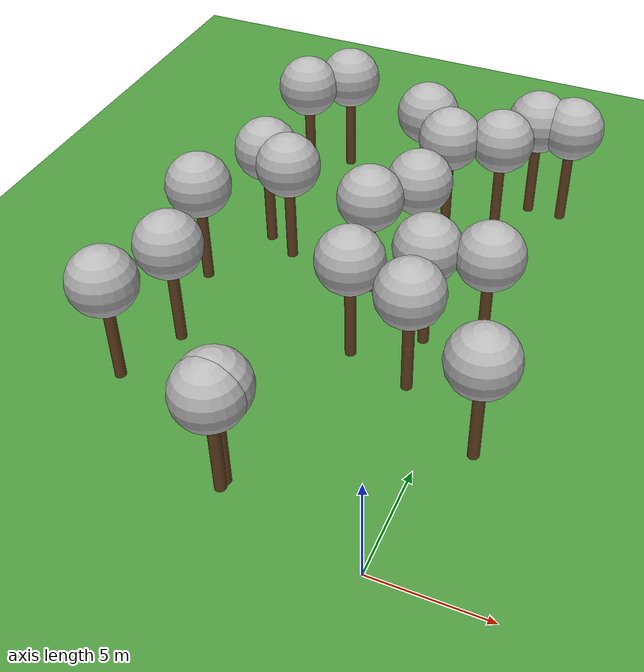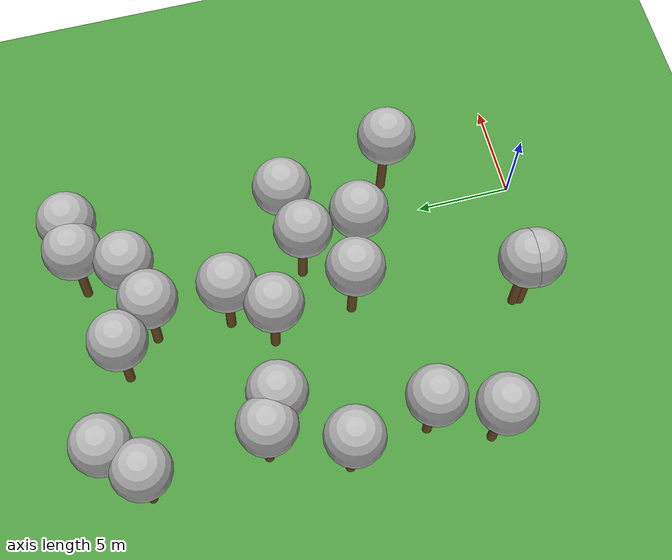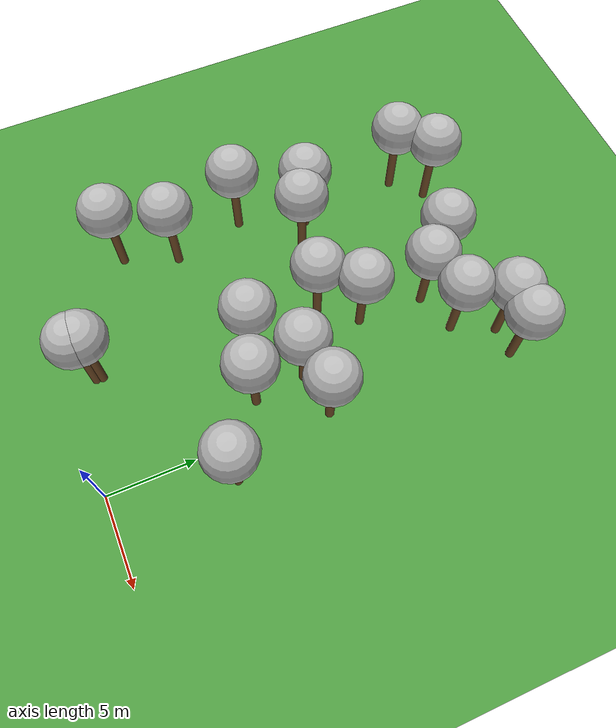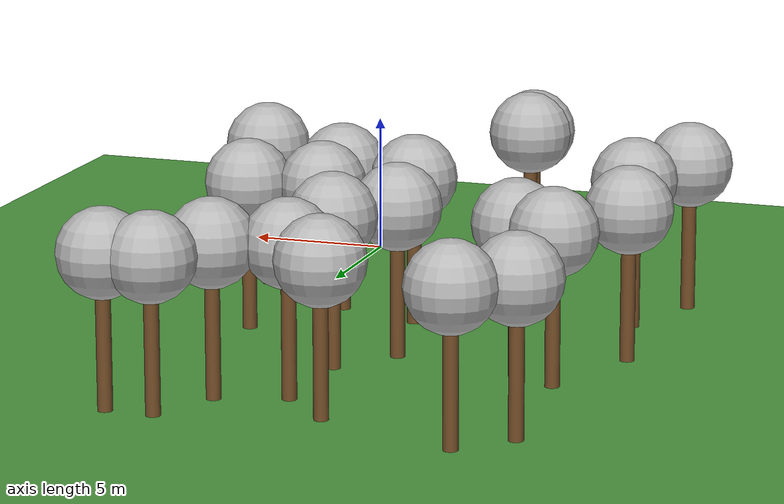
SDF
<sdf version="1.5">
 <world name="default">
  <model name="tree_simple488">
   <static>1</static>
   <link name="link">
    <pose>0 0 0.1 0 -0 0</pose>
    <collision name="collision_trunk">
     <pose>0 0 2 0 -0 0</pose>
     <geometry><cylinder><radius>0.25</radius><length>4</length></cylinder></geometry>
    </collision>
    <collision name="collision_treetop">
     <pose>0 0 5.2 0 -0 0</pose>
     <geometry><sphere><radius>1.5</radius></sphere></geometry>
    </collision>
    <visual name="trunk">
     <pose>0 0 2 0 -0 0</pose>
     <geometry><cylinder><radius>0.25</radius><length>4</length></cylinder></geometry>
     <material>
      <script>
       <uri>model://tree_simple/scripts</uri>
       <uri>model://tree_simple/materials/textures</uri>
       <name>TreeSimple/Trunk</name>
      </script>
     </material>
    </visual>
    <visual name="treetop">
     <pose>0 0 5.2 0 -0 0</pose>
     <geometry><sphere><radius>1.5</radius></sphere></geometry>
     <material>
      <script>
       <uri>model://tree_simple/scripts</uri>
       <uri>model://tree_simple/materials/textures</uri>
       <name>TreeSimple/Treetop</name>
      </script>
     </material>
    </visual>
   </link>
   <pose>-13.1215818691 12.435953241 0 0 -0 0</pose>
  </model>
  <model name="tree_simple480">
   <static>1</static>
   <link name="link">
    <pose>0 0 0.1 0 -0 0</pose>
    <collision name="collision_trunk">
     <pose>0 0 2 0 -0 0</pose>
     <geometry><cylinder><radius>0.25</radius><length>4</length></cylinder></geometry>
    </collision>
    <collision name="collision_treetop">
     <pose>0 0 5.2 0 -0 0</pose>
     <geometry><sphere><radius>1.5</radius></sphere></geometry>
    </collision>
    <visual name="trunk">
     <pose>0 0 2 0 -0 0</pose>
     <geometry><cylinder><radius>0.25</radius><length>4</length></cylinder></geometry>
     <material>
      <script>
       <uri>model://tree_simple/scripts</uri>
       <uri>model://tree_simple/materials/textures</uri>
       <name>TreeSimple/Trunk</name>
      </script>
     </material>
    </visual>
    <visual name="treetop">
     <pose>0 0 5.2 0 -0 0</pose>
     <geometry><sphere><radius>1.5</radius></sphere></geometry>
     <material>
      <script>
       <uri>model://tree_simple/scripts</uri>
       <uri>model://tree_simple/materials/textures</uri>
       <name>TreeSimple/Treetop</name>
      </script>
     </material>
    </visual>
   </link>
   <pose>-2.16211412072 12.1351070175 0 0 -0 0</pose>
  </model>
  <model name="tree_simple479">
   <static>1</static>
   <link name="link">
    <pose>0 0 0.1 0 -0 0</pose>
    <collision name="collision_trunk">
     <pose>0 0 2 0 -0 0</pose>
     <geometry><cylinder><radius>0.25</radius><length>4</length></cylinder></geometry>
    </collision>
    <collision name="collision_treetop">
     <pose>0 0 5.2 0 -0 0</pose>
     <geometry><sphere><radius>1.5</radius></sphere></geometry>
    </collision>
    <visual name="trunk">
     <pose>0 0 2 0 -0 0</pose>
     <geometry><cylinder><radius>0.25</radius><length>4</length></cylinder></geometry>
     <material>
      <script>
       <uri>model://tree_simple/scripts</uri>
       <uri>model://tree_simple/materials/textures</uri>
       <name>TreeSimple/Trunk</name>
      </script>
     </material>
    </visual>
    <visual name="treetop">
     <pose>0 0 5.2 0 -0 0</pose>
     <geometry><sphere><radius>1.5</radius></sphere></geometry>
     <material>
      <script>
       <uri>model://tree_simple/scripts</uri>
       <uri>model://tree_simple/materials/textures</uri>
       <name>TreeSimple/Treetop</name>
      </script>
     </material>
    </visual>
   </link>
   <pose>-12.2778199556 22.3020251283 0 0 -0 0</pose>
  </model>
  <model name="tree_simple471">
   <static>1</static>
   <link name="link">
    <pose>0 0 0.1 0 -0 0</pose>
    <collision name="collision_trunk">
     <pose>0 0 2 0 -0 0</pose>
     <geometry><cylinder><radius>0.25</radius><length>4</length></cylinder></geometry>
    </collision>
    <collision name="collision_treetop">
     <pose>0 0 5.2 0 -0 0</pose>
     <geometry><sphere><radius>1.5</radius></sphere></geometry>
    </collision>
    <visual name="trunk">
     <pose>0 0 2 0 -0 0</pose>
     <geometry><cylinder><radius>0.25</radius><length>4</length></cylinder></geometry>
     <material>
      <script>
       <uri>model://tree_simple/scripts</uri>
       <uri>model://tree_simple/materials/textures</uri>
       <name>TreeSimple/Trunk</name>
      </script>
     </material>
    </visual>
    <visual name="treetop">
     <pose>0 0 5.2 0 -0 0</pose>
     <geometry><sphere><radius>1.5</radius></sphere></geometry>
     <material>
      <script>
       <uri>model://tree_simple/scripts</uri>
       <uri>model://tree_simple/materials/textures</uri>
       <name>TreeSimple/Treetop</name>
      </script>
     </material>
    </visual>
   </link>
   <pose>-4.10985349052 16.4703272545 0 0 -0 0</pose>
  </model>
  <model name="tree_simple466">
   <static>1</static>
   <link name="link">
    <pose>0 0 0.1 0 -0 0</pose>
    <collision name="collision_trunk">
     <pose>0 0 2 0 -0 0</pose>
     <geometry><cylinder><radius>0.25</radius><length>4</length></cylinder></geometry>
    </collision>
    <collision name="collision_treetop">
     <pose>0 0 5.2 0 -0 0</pose>
     <geometry><sphere><radius>1.5</radius></sphere></geometry>
    </collision>
    <visual name="trunk">
     <pose>0 0 2 0 -0 0</pose>
     <geometry><cylinder><radius>0.25</radius><length>4</length></cylinder></geometry>
     <material>
      <script>
       <uri>model://tree_simple/scripts</uri>
       <uri>model://tree_simple/materials/textures</uri>
       <name>TreeSimple/Trunk</name>
      </script>
     </material>
    </visual>
    <visual name="treetop">
     <pose>0 0 5.2 0 -0 0</pose>
     <geometry><sphere><radius>1.5</radius></sphere></geometry>
     <material>
      <script>
       <uri>model://tree_simple/scripts</uri>
       <uri>model://tree_simple/materials/textures</uri>
       <name>TreeSimple/Treetop</name>
      </script>
     </material>
    </visual>
   </link>
   <pose>-5.77986608036 22.173723886 0 0 -0 0</pose>
  </model>
  <model name="tree_simple453">
   <static>1</static>
   <link name="link">
    <pose>0 0 0.1 0 -0 0</pose>
    <collision name="collision_trunk">
     <pose>0 0 2 0 -0 0</pose>
     <geometry><cylinder><radius>0.25</radius><length>4</length></cylinder></geometry>
    </collision>
    <collision name="collision_treetop">
     <pose>0 0 5.2 0 -0 0</pose>
     <geometry><sphere><radius>1.5</radius></sphere></geometry>
    </collision>
    <visual name="trunk">
     <pose>0 0 2 0 -0 0</pose>
     <geometry><cylinder><radius>0.25</radius><length>4</length></cylinder></geometry>
     <material>
      <script>
       <uri>model://tree_simple/scripts</uri>
       <uri>model://tree_simple/materials/textures</uri>
       <name>TreeSimple/Trunk</name>
      </script>
     </material>
    </visual>
    <visual name="treetop">
     <pose>0 0 5.2 0 -0 0</pose>
     <geometry><sphere><radius>1.5</radius></sphere></geometry>
     <material>
      <script>
       <uri>model://tree_simple/scripts</uri>
       <uri>model://tree_simple/materials/textures</uri>
       <name>TreeSimple/Treetop</name>
      </script>
     </material>
    </visual>
   </link>
   <pose>-12.135251061 8.19022164755 0 0 -0 0</pose>
  </model>
  <model name="tree_simple442">
   <static>1</static>
   <link name="link">
    <pose>0 0 0.1 0 -0 0</pose>
    <collision name="collision_trunk">
     <pose>0 0 2 0 -0 0</pose>
     <geometry><cylinder><radius>0.25</radius><length>4</length></cylinder></geometry>
    </collision>
    <collision name="collision_treetop">
     <pose>0 0 5.2 0 -0 0</pose>
     <geometry><sphere><radius>1.5</radius></sphere></geometry>
    </collision>
    <visual name="trunk">
     <pose>0 0 2 0 -0 0</pose>
     <geometry><cylinder><radius>0.25</radius><length>4</length></cylinder></geometry>
     <material>
      <script>
       <uri>model://tree_simple/scripts</uri>
       <uri>model://tree_simple/materials/textures</uri>
       <name>TreeSimple/Trunk</name>
      </script>
     </material>
    </visual>
    <visual name="treetop">
     <pose>0 0 5.2 0 -0 0</pose>
     <geometry><sphere><radius>1.5</radius></sphere></geometry>
     <material>
      <script>
       <uri>model://tree_simple/scripts</uri>
       <uri>model://tree_simple/materials/textures</uri>
       <name>TreeSimple/Treetop</name>
      </script>
     </material>
    </visual>
   </link>
   <pose>-1.68249170611 21.1094247696 0 0 -0 0</pose>
  </model>
  <model name="tree_simple417">
   <static>1</static>
   <link name="link">
    <pose>0 0 0.1 0 -0 0</pose>
    <collision name="collision_trunk">
     <pose>0 0 2 0 -0 0</pose>
     <geometry><cylinder><radius>0.25</radius><length>4</length></cylinder></geometry>
    </collision>
    <collision name="collision_treetop">
     <pose>0 0 5.2 0 -0 0</pose>
     <geometry><sphere><radius>1.5</radius></sphere></geometry>
    </collision>
    <visual name="trunk">
     <pose>0 0 2 0 -0 0</pose>
     <geometry><cylinder><radius>0.25</radius><length>4</length></cylinder></geometry>
     <material>
      <script>
       <uri>model://tree_simple/scripts</uri>
       <uri>model://tree_simple/materials/textures</uri>
       <name>TreeSimple/Trunk</name>
      </script>
     </material>
    </visual>
    <visual name="treetop">
     <pose>0 0 5.2 0 -0 0</pose>
     <geometry><sphere><radius>1.5</radius></sphere></geometry>
     <material>
      <script>
       <uri>model://tree_simple/scripts</uri>
       <uri>model://tree_simple/materials/textures</uri>
       <name>TreeSimple/Treetop</name>
      </script>
     </material>
    </visual>
   </link>
   <pose>-1.82310579314 9.17527441854 0 0 -0 0</pose>
  </model>
  <model name="tree_simple412">
   <static>1</static>
   <link name="link">
    <pose>0 0 0.1 0 -0 0</pose>
    <collision name="collision_trunk">
     <pose>0 0 2 0 -0 0</pose>
     <geometry><cylinder><radius>0.25</radius><length>4</length></cylinder></geometry>
    </collision>
    <collision name="collision_treetop">
     <pose>0 0 5.2 0 -0 0</pose>
     <geometry><sphere><radius>1.5</radius></sphere></geometry>
    </collision>
    <visual name="trunk">
     <pose>0 0 2 0 -0 0</pose>
     <geometry><cylinder><radius>0.25</radius><length>4</length></cylinder></geometry>
     <material>
      <script>
       <uri>model://tree_simple/scripts</uri>
       <uri>model://tree_simple/materials/textures</uri>
       <name>TreeSimple/Trunk</name>
      </script>
     </material>
    </visual>
    <visual name="treetop">
     <pose>0 0 5.2 0 -0 0</pose>
     <geometry><sphere><radius>1.5</radius></sphere></geometry>
     <material>
      <script>
       <uri>model://tree_simple/scripts</uri>
       <uri>model://tree_simple/materials/textures</uri>
       <name>TreeSimple/Treetop</name>
      </script>
     </material>
    </visual>
   </link>
   <pose>1.94235434688 6.68973059551 0 0 -0 0</pose>
  </model>
  <model name="tree_simple282">
   <static>1</static>
   <link name="link">
    <pose>0 0 0.1 0 -0 0</pose>
    <collision name="collision_trunk">
     <pose>0 0 2 0 -0 0</pose>
     <geometry><cylinder><radius>0.25</radius><length>4</length></cylinder></geometry>
    </collision>
    <collision name="collision_treetop">
     <pose>0 0 5.2 0 -0 0</pose>
     <geometry><sphere><radius>1.5</radius></sphere></geometry>
    </collision>
    <visual name="trunk">
     <pose>0 0 2 0 -0 0</pose>
     <geometry><cylinder><radius>0.25</radius><length>4</length></cylinder></geometry>
     <material>
      <script>
       <uri>model://tree_simple/scripts</uri>
       <uri>model://tree_simple/materials/textures</uri>
       <name>TreeSimple/Trunk</name>
      </script>
     </material>
    </visual>
    <visual name="treetop">
     <pose>0 0 5.2 0 -0 0</pose>
     <geometry><sphere><radius>1.5</radius></sphere></geometry>
     <material>
      <script>
       <uri>model://tree_simple/scripts</uri>
       <uri>model://tree_simple/materials/textures</uri>
       <name>TreeSimple/Treetop</name>
      </script>
     </material>
    </visual>
   </link>
   <pose>-10.116665752 15.3935200089 0 0 -0 0</pose>
  </model>
  <model name="tree_simple232">
   <static>1</static>
   <link name="link">
    <pose>0 0 0.1 0 -0 0</pose>
    <collision name="collision_trunk">
     <pose>0 0 2 0 -0 0</pose>
     <geometry><cylinder><radius>0.25</radius><length>4</length></cylinder></geometry>
    </collision>
    <collision name="collision_treetop">
     <pose>0 0 5.2 0 -0 0</pose>
     <geometry><sphere><radius>1.5</radius></sphere></geometry>
    </collision>
    <visual name="trunk">
     <pose>0 0 2 0 -0 0</pose>
     <geometry><cylinder><radius>0.25</radius><length>4</length></cylinder></geometry>
     <material>
      <script>
       <uri>model://tree_simple/scripts</uri>
       <uri>model://tree_simple/materials/textures</uri>
       <name>TreeSimple/Trunk</name>
      </script>
     </material>
    </visual>
    <visual name="treetop">
     <pose>0 0 5.2 0 -0 0</pose>
     <geometry><sphere><radius>1.5</radius></sphere></geometry>
     <material>
      <script>
       <uri>model://tree_simple/scripts</uri>
       <uri>model://tree_simple/materials/textures</uri>
       <name>TreeSimple/Treetop</name>
      </script>
     </material>
    </visual>
   </link>
   <pose>-11.6357803634 16.236207717 0 0 -0 0</pose>
  </model>
  <model name="tree_simple187">
   <static>1</static>
   <link name="link">
    <pose>0 0 0.1 0 -0 0</pose>
    <collision name="collision_trunk">
     <pose>0 0 2 0 -0 0</pose>
     <geometry><cylinder><radius>0.25</radius><length>4</length></cylinder></geometry>
    </collision>
    <collision name="collision_treetop">
     <pose>0 0 5.2 0 -0 0</pose>
     <geometry><sphere><radius>1.5</radius></sphere></geometry>
    </collision>
    <visual name="trunk">
     <pose>0 0 2 0 -0 0</pose>
     <geometry><cylinder><radius>0.25</radius><length>4</length></cylinder></geometry>
     <material>
      <script>
       <uri>model://tree_simple/scripts</uri>
       <uri>model://tree_simple/materials/textures</uri>
       <name>TreeSimple/Trunk</name>
      </script>
     </material>
    </visual>
    <visual name="treetop">
     <pose>0 0 5.2 0 -0 0</pose>
     <geometry><sphere><radius>1.5</radius></sphere></geometry>
     <material>
      <script>
       <uri>model://tree_simple/scripts</uri>
       <uri>model://tree_simple/materials/textures</uri>
       <name>TreeSimple/Treetop</name>
      </script>
     </material>
    </visual>
   </link>
   <pose>-6.45553635196 1.79140972094 0 0 -0 0</pose>
  </model>
  <model name="tree_simple175">
   <static>1</static>
   <link name="link">
    <pose>0 0 0.1 0 -0 0</pose>
    <collision name="collision_trunk">
     <pose>0 0 2 0 -0 0</pose>
     <geometry><cylinder><radius>0.25</radius><length>4</length></cylinder></geometry>
    </collision>
    <collision name="collision_treetop">
     <pose>0 0 5.2 0 -0 0</pose>
     <geometry><sphere><radius>1.5</radius></sphere></geometry>
    </collision>
    <visual name="trunk">
     <pose>0 0 2 0 -0 0</pose>
     <geometry><cylinder><radius>0.25</radius><length>4</length></cylinder></geometry>
     <material>
      <script>
       <uri>model://tree_simple/scripts</uri>
       <uri>model://tree_simple/materials/textures</uri>
       <name>TreeSimple/Trunk</name>
      </script>
     </material>
    </visual>
    <visual name="treetop">
     <pose>0 0 5.2 0 -0 0</pose>
     <geometry><sphere><radius>1.5</radius></sphere></geometry>
     <material>
      <script>
       <uri>model://tree_simple/scripts</uri>
       <uri>model://tree_simple/materials/textures</uri>
       <name>TreeSimple/Treetop</name>
      </script>
     </material>
    </visual>
   </link>
   <pose>-0.556108098606 23.4554331428 0 0 -0 0</pose>
  </model>
  <model name="tree_simple165">
   <static>1</static>
   <link name="link">
    <pose>0 0 0.1 0 -0 0</pose>
    <collision name="collision_trunk">
     <pose>0 0 2 0 -0 0</pose>
     <geometry><cylinder><radius>0.25</radius><length>4</length></cylinder></geometry>
    </collision>
    <collision name="collision_treetop">
     <pose>0 0 5.2 0 -0 0</pose>
     <geometry><sphere><radius>1.5</radius></sphere></geometry>
    </collision>
    <visual name="trunk">
     <pose>0 0 2 0 -0 0</pose>
     <geometry><cylinder><radius>0.25</radius><length>4</length></cylinder></geometry>
     <material>
      <script>
       <uri>model://tree_simple/scripts</uri>
       <uri>model://tree_simple/materials/textures</uri>
       <name>TreeSimple/Trunk</name>
      </script>
     </material>
    </visual>
    <visual name="treetop">
     <pose>0 0 5.2 0 -0 0</pose>
     <geometry><sphere><radius>1.5</radius></sphere></geometry>
     <material>
      <script>
       <uri>model://tree_simple/scripts</uri>
       <uri>model://tree_simple/materials/textures</uri>
       <name>TreeSimple/Treetop</name>
      </script>
     </material>
    </visual>
   </link>
   <pose>-6.476660544 1.43780692284 0 0 -0 0</pose>
  </model>
  <model name="tree_simple158">
   <static>1</static>
   <link name="link">
    <pose>0 0 0.1 0 -0 0</pose>
    <collision name="collision_trunk">
     <pose>0 0 2 0 -0 0</pose>
     <geometry><cylinder><radius>0.25</radius><length>4</length></cylinder></geometry>
    </collision>
    <collision name="collision_treetop">
     <pose>0 0 5.2 0 -0 0</pose>
     <geometry><sphere><radius>1.5</radius></sphere></geometry>
    </collision>
    <visual name="trunk">
     <pose>0 0 2 0 -0 0</pose>
     <geometry><cylinder><radius>0.25</radius><length>4</length></cylinder></geometry>
     <material>
      <script>
       <uri>model://tree_simple/scripts</uri>
       <uri>model://tree_simple/materials/textures</uri>
       <name>TreeSimple/Trunk</name>
      </script>
     </material>
    </visual>
    <visual name="treetop">
     <pose>0 0 5.2 0 -0 0</pose>
     <geometry><sphere><radius>1.5</radius></sphere></geometry>
     <material>
      <script>
       <uri>model://tree_simple/scripts</uri>
       <uri>model://tree_simple/materials/textures</uri>
       <name>TreeSimple/Treetop</name>
      </script>
     </material>
    </visual>
   </link>
   <pose>-5.6810181288 14.4728525014 0 0 -0 0</pose>
  </model>
  <model name="tree_simple130">
   <static>1</static>
   <link name="link">
    <pose>0 0 0.1 0 -0 0</pose>
    <collision name="collision_trunk">
     <pose>0 0 2 0 -0 0</pose>
     <geometry><cylinder><radius>0.25</radius><length>4</length></cylinder></geometry>
    </collision>
    <collision name="collision_treetop">
     <pose>0 0 5.2 0 -0 0</pose>
     <geometry><sphere><radius>1.5</radius></sphere></geometry>
    </collision>
    <visual name="trunk">
     <pose>0 0 2 0 -0 0</pose>
     <geometry><cylinder><radius>0.25</radius><length>4</length></cylinder></geometry>
     <material>
      <script>
       <uri>model://tree_simple/scripts</uri>
       <uri>model://tree_simple/materials/textures</uri>
       <name>TreeSimple/Trunk</name>
      </script>
     </material>
    </visual>
    <visual name="treetop">
     <pose>0 0 5.2 0 -0 0</pose>
     <geometry><sphere><radius>1.5</radius></sphere></geometry>
     <material>
      <script>
       <uri>model://tree_simple/scripts</uri>
       <uri>model://tree_simple/materials/textures</uri>
       <name>TreeSimple/Treetop</name>
      </script>
     </material>
    </visual>
   </link>
   <pose>-4.79782028342 10.1484836022 0 0 -0 0</pose>
  </model>
  <model name="tree_simple86">
   <static>1</static>
   <link name="link">
    <pose>0 0 0.1 0 -0 0</pose>
    <collision name="collision_trunk">
     <pose>0 0 2 0 -0 0</pose>
     <geometry><cylinder><radius>0.25</radius><length>4</length></cylinder></geometry>
    </collision>
    <collision name="collision_treetop">
     <pose>0 0 5.2 0 -0 0</pose>
     <geometry><sphere><radius>1.5</radius></sphere></geometry>
    </collision>
    <visual name="trunk">
     <pose>0 0 2 0 -0 0</pose>
     <geometry><cylinder><radius>0.25</radius><length>4</length></cylinder></geometry>
     <material>
      <script>
       <uri>model://tree_simple/scripts</uri>
       <uri>model://tree_simple/materials/textures</uri>
       <name>TreeSimple/Trunk</name>
      </script>
     </material>
    </visual>
    <visual name="treetop">
     <pose>0 0 5.2 0 -0 0</pose>
     <geometry><sphere><radius>1.5</radius></sphere></geometry>
     <material>
      <script>
       <uri>model://tree_simple/scripts</uri>
       <uri>model://tree_simple/materials/textures</uri>
       <name>TreeSimple/Treetop</name>
      </script>
     </material>
    </visual>
   </link>
   <pose>-4.02162942473 20.3702086514 0 0 -0 0</pose>
  </model>
  <model name="tree_simple77">
   <static>1</static>
   <link name="link">
    <pose>0 0 0.1 0 -0 0</pose>
    <collision name="collision_trunk">
     <pose>0 0 2 0 -0 0</pose>
     <geometry><cylinder><radius>0.25</radius><length>4</length></cylinder></geometry>
    </collision>
    <collision name="collision_treetop">
     <pose>0 0 5.2 0 -0 0</pose>
     <geometry><sphere><radius>1.5</radius></sphere></geometry>
    </collision>
    <visual name="trunk">
     <pose>0 0 2 0 -0 0</pose>
     <geometry><cylinder><radius>0.25</radius><length>4</length></cylinder></geometry>
     <material>
      <script>
       <uri>model://tree_simple/scripts</uri>
       <uri>model://tree_simple/materials/textures</uri>
       <name>TreeSimple/Trunk</name>
      </script>
     </material>
    </visual>
    <visual name="treetop">
     <pose>0 0 5.2 0 -0 0</pose>
     <geometry><sphere><radius>1.5</radius></sphere></geometry>
     <material>
      <script>
       <uri>model://tree_simple/scripts</uri>
       <uri>model://tree_simple/materials/textures</uri>
       <name>TreeSimple/Treetop</name>
      </script>
     </material>
    </visual>
   </link>
   <pose>-10.6651451359 23.9118826029 0 0 -0 0</pose>
  </model>
  <model name="tree_simple73">
   <static>1</static>
   <link name="link">
    <pose>0 0 0.1 0 -0 0</pose>
    <collision name="collision_trunk">
     <pose>0 0 2 0 -0 0</pose>
     <geometry><cylinder><radius>0.25</radius><length>4</length></cylinder></geometry>
    </collision>
    <collision name="collision_treetop">
     <pose>0 0 5.2 0 -0 0</pose>
     <geometry><sphere><radius>1.5</radius></sphere></geometry>
    </collision>
    <visual name="trunk">
     <pose>0 0 2 0 -0 0</pose>
     <geometry><cylinder><radius>0.25</radius><length>4</length></cylinder></geometry>
     <material>
      <script>
       <uri>model://tree_simple/scripts</uri>
       <uri>model://tree_simple/materials/textures</uri>
       <name>TreeSimple/Trunk</name>
      </script>
     </material>
    </visual>
    <visual name="treetop">
     <pose>0 0 5.2 0 -0 0</pose>
     <geometry><sphere><radius>1.5</radius></sphere></geometry>
     <material>
      <script>
       <uri>model://tree_simple/scripts</uri>
       <uri>model://tree_simple/materials/textures</uri>
       <name>TreeSimple/Treetop</name>
      </script>
     </material>
    </visual>
   </link>
   <pose>1.10004900248 23.4568824066 0 0 -0 0</pose>
  </model>
  <model name="tree_simple72">
   <static>1</static>
   <link name="link">
    <pose>0 0 0.1 0 -0 0</pose>
    <collision name="collision_trunk">
     <pose>0 0 2 0 -0 0</pose>
     <geometry><cylinder><radius>0.25</radius><length>4</length></cylinder></geometry>
    </collision>
    <collision name="collision_treetop">
     <pose>0 0 5.2 0 -0 0</pose>
     <geometry><sphere><radius>1.5</radius></sphere></geometry>
    </collision>
    <visual name="trunk">
     <pose>0 0 2 0 -0 0</pose>
     <geometry><cylinder><radius>0.25</radius><length>4</length></cylinder></geometry>
     <material>
      <script>
       <uri>model://tree_simple/scripts</uri>
       <uri>model://tree_simple/materials/textures</uri>
       <name>TreeSimple/Trunk</name>
      </script>
     </material>
    </visual>
    <visual name="treetop">
     <pose>0 0 5.2 0 -0 0</pose>
     <geometry><sphere><radius>1.5</radius></sphere></geometry>
     <material>
      <script>
       <uri>model://tree_simple/scripts</uri>
       <uri>model://tree_simple/materials/textures</uri>
       <name>TreeSimple/Treetop</name>
      </script>
     </material>
    </visual>
   </link>
   <pose>0.388373058104 12.6065734572 0 0 -0 0</pose>
  </model>
  <model name="tree_simple21">
   <static>1</static>
   <link name="link">
    <pose>0 0 0.1 0 -0 0</pose>
    <collision name="collision_trunk">
     <pose>0 0 2 0 -0 0</pose>
     <geometry><cylinder><radius>0.25</radius><length>4</length></cylinder></geometry>
    </collision>
    <collision name="collision_treetop">
     <pose>0 0 5.2 0 -0 0</pose>
     <geometry><sphere><radius>1.5</radius></sphere></geometry>
    </collision>
    <visual name="trunk">
     <pose>0 0 2 0 -0 0</pose>
     <geometry><cylinder><radius>0.25</radius><length>4</length></cylinder></geometry>
     <material>
      <script>
       <uri>model://tree_simple/scripts</uri>
       <uri>model://tree_simple/materials/textures</uri>
       <name>TreeSimple/Trunk</name>
      </script>
     </material>
    </visual>
    <visual name="treetop">
     <pose>0 0 5.2 0 -0 0</pose>
     <geometry><sphere><radius>1.5</radius></sphere></geometry>
     <material>
      <script>
       <uri>model://tree_simple/scripts</uri>
       <uri>model://tree_simple/materials/textures</uri>
       <name>TreeSimple/Treetop</name>
      </script>
     </material>
    </visual>
   </link>
   <pose>-13.3304563305 5.13608108551 0 0 -0 0</pose>
  </model>
  <model name="ground_plane">
   <static>true</static>
   <link name="link">
    <collision name="collision">
     <geometry><plane><normal>0 0 1</normal><size>250 250</size></plane></geometry>
     <surface><friction><ode><mu>1</mu><mu2>1</mu2></ode></friction></surface>
    </collision>
    <visual name="grass">
     <cast_shadows>false</cast_shadows>
     <geometry><plane><normal>0 0 1</normal><size>150 250</size></plane></geometry>
     <material>
      <script><uri>file://media/materials/scripts/Gazebo.material</uri><name>Gazebo/Grass</name></script>
     </material>
    </visual>
   </link>
  </model>
 </world>
</sdf>
